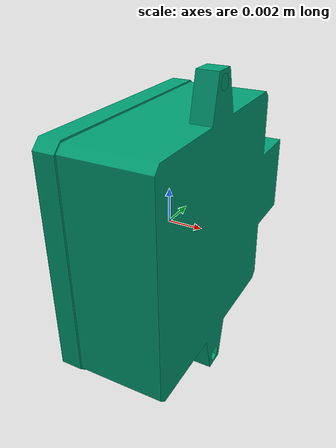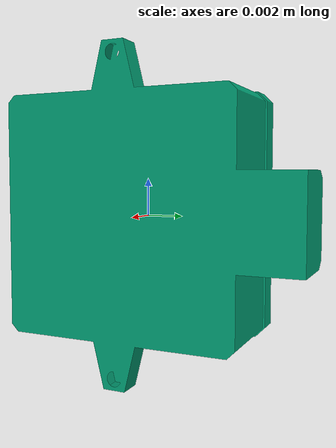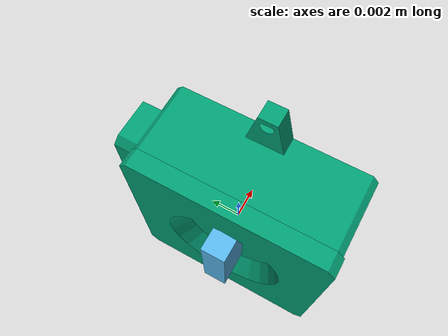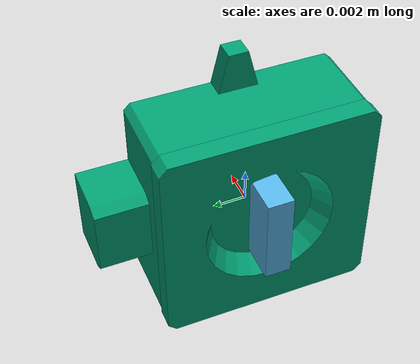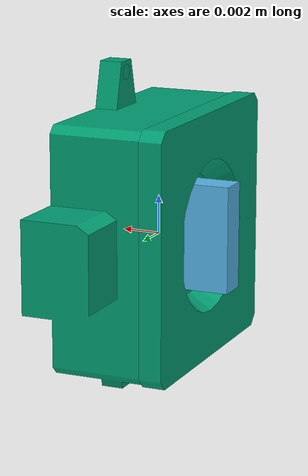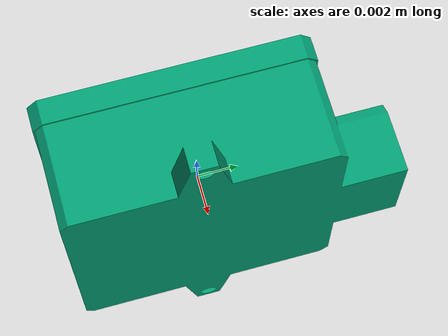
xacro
<robot name="partnet_251f4c140c41f05d25975e984b0e050b" xmlns:xacro="http://wiki.ros.org/xacro">
	<xacro:property name="scale" value="100" /><link name="base" />
	<link name="link_0">
		<visual name="switch-1">
			<origin xyz="${-0.04026600031718474 / scale} ${-0.0025320589489936903 / scale} ${0 / scale}" />
			<geometry>
				<mesh filename="package://switch_description/urdf/100871/textured_objs/original-4.obj" scale="${1 / scale} ${1 / scale} ${1 / scale}" />
			</geometry>
		</visual>
		<collision>
			<origin xyz="${-0.04026600031718474 / scale} ${-0.0025320589489936903 / scale} ${0 / scale}" />
			<geometry>
				<mesh filename="package://switch_description/urdf/100871/textured_objs/original-4.obj" scale="${1 / scale} ${1 / scale} ${1 / scale}" />
			</geometry>
		</collision>
	</link>
	<joint name="joint_0" type="continuous">
		<origin xyz="${0.04026600031718474 / scale} ${0.0025320589489936903 / scale} ${0 / scale}" />
		<axis xyz="0 0 1" />
		<child link="link_0" />
		<parent link="link_1" />
	</joint>
	<link name="link_1">
		<visual name="base_body-2">
			<origin xyz="${0 / scale} ${0 / scale} ${0 / scale}" />
			<geometry>
				<mesh filename="package://switch_description/urdf/100871/textured_objs/original-3.obj" scale="${1 / scale} ${1 / scale} ${1 / scale}" />
			</geometry>
		</visual>
		<visual name="base_body-2">
			<origin xyz="${0 / scale} ${0 / scale} ${0 / scale}" />
			<geometry>
				<mesh filename="package://switch_description/urdf/100871/textured_objs/original-2.obj" scale="${1 / scale} ${1 / scale} ${1 / scale}" />
			</geometry>
		</visual>
		<collision>
			<origin xyz="${0 / scale} ${0 / scale} ${0 / scale}" />
			<geometry>
				<mesh filename="package://switch_description/urdf/100871/textured_objs/original-3.obj" scale="${1 / scale} ${1 / scale} ${1 / scale}" />
			</geometry>
		</collision>
		<collision>
			<origin xyz="${0 / scale} ${0 / scale} ${0 / scale}" />
			<geometry>
				<mesh filename="package://switch_description/urdf/100871/textured_objs/original-2.obj" scale="${1 / scale} ${1 / scale} ${1 / scale}" />
			</geometry>
		</collision>
	</link>
	<joint name="joint_1" type="fixed">
		<origin rpy="1.570796326794897 0 -1.570796326794897" xyz="${0 / scale} ${0 / scale} ${0 / scale}" />
		<child link="link_1" />
		<parent link="base" />
	</joint>
</robot>
